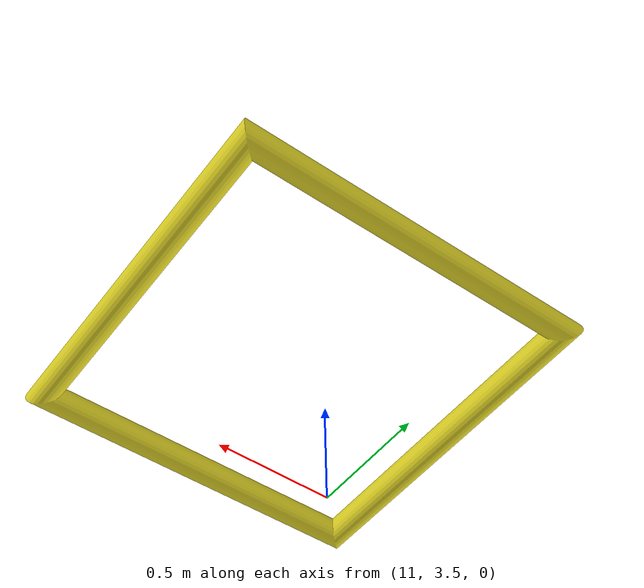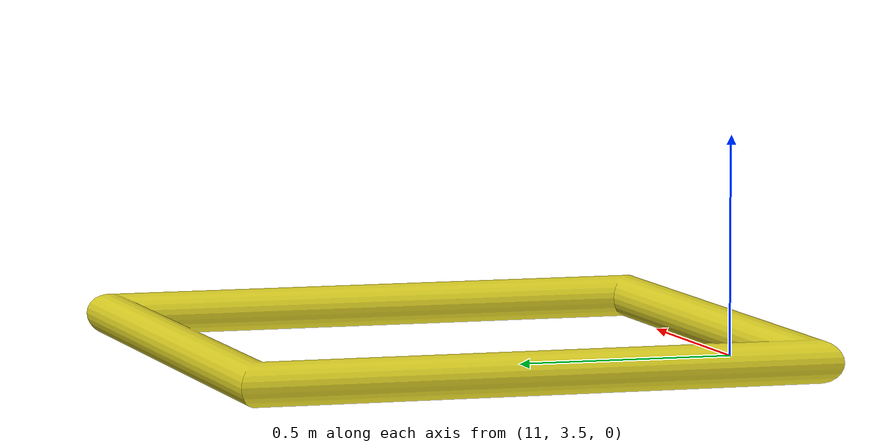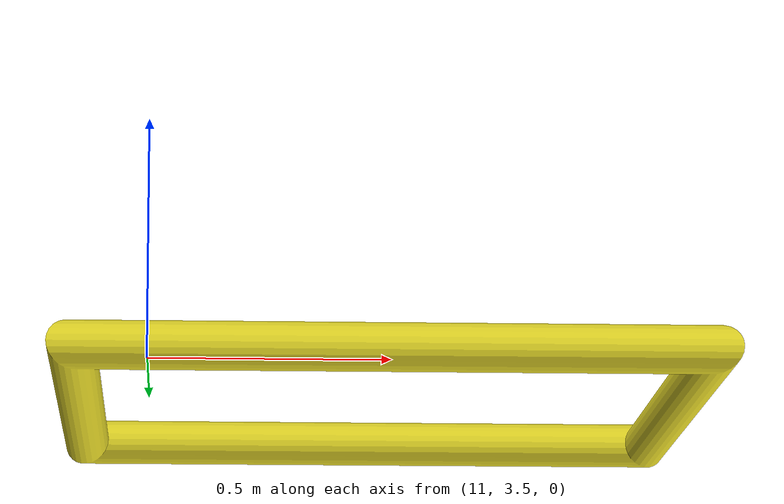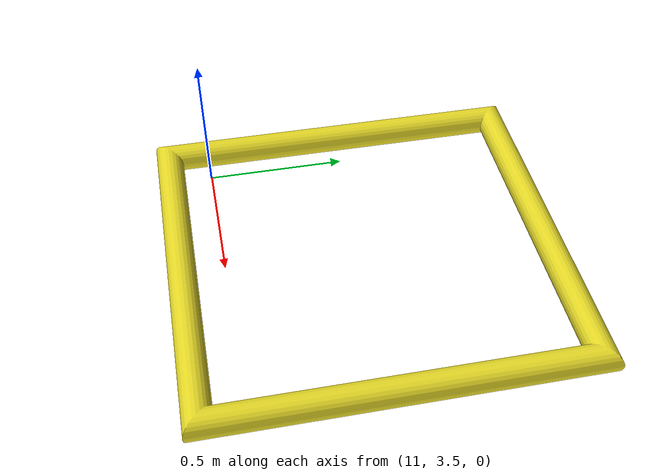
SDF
<?xml version="1.0" ?>
<sdf version="1.6">

    <model name='start_point'>
      <link name='start'>
        <pose frame=''>0 0 0 0 -0 0</pose>
        <inertial>
          <pose frame=''>-5.1e-05 4.8e-05 5e-06 0 -0 0</pose>
          <mass>40.85</mass>
          <inertia>
            <ixx>11.586</ixx>
            <ixy>-9.9817e-08</ixy>
            <ixz>8.7525e-06</ixz>
            <iyy>11.586</iyy>
            <iyz>1.539e-05</iyz>
            <izz>23.121</izz>
          </inertia>
        </inertial>
        <collision name='start_collision'>
          <pose frame=''>0 0 0 1.5708 -0 0</pose>
          <geometry>
            <mesh>
              <scale>1 1 1</scale>
              <uri>file://meshes/sauvc_pool/start.STL</uri>
            </mesh>
          </geometry>
          <max_contacts>10</max_contacts>
          <surface>
            <contact>
              <ode/>
            </contact>
            <bounce/>
            <friction>
              <torsional>
                <ode/>
              </torsional>
              <ode/>
            </friction>
          </surface>
        </collision>
        <visual name='start_visual'>
          <pose frame=''>0 0 0 1.5708 -0 0</pose>
          <geometry>
            <mesh>
              <scale>1 1 1</scale>
              <uri>file://meshes/sauvc_pool/start.STL</uri>
            </mesh>
          </geometry>
        <material>
          <script>
            <uri>file://media/materials/scripts/gazebo.material</uri>
            <name>Gazebo/Yellow</name>
          </script>
        </material>
        </visual>
        <self_collide>0</self_collide>
        <enable_wind>0</enable_wind>
        <kinematic>0</kinematic>
      </link>
      <static>1</static>
      <pose frame=''>11.5 4 0 0 -0 0</pose>
    </model>

</sdf>
